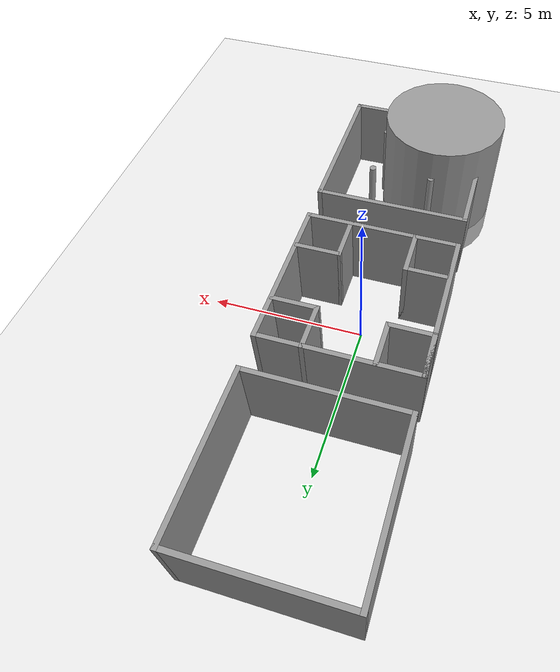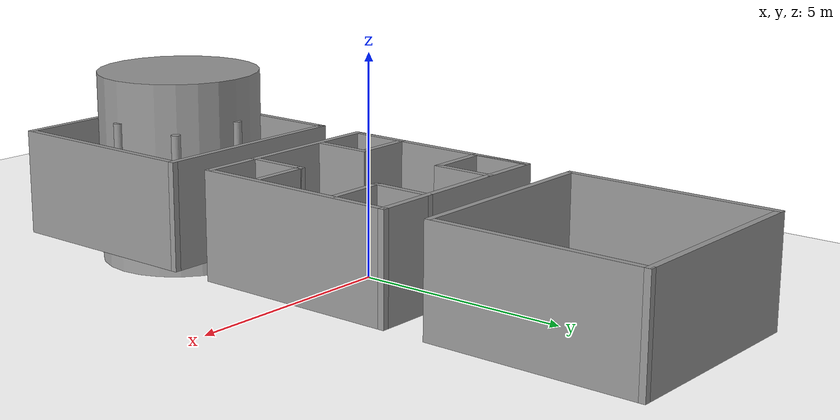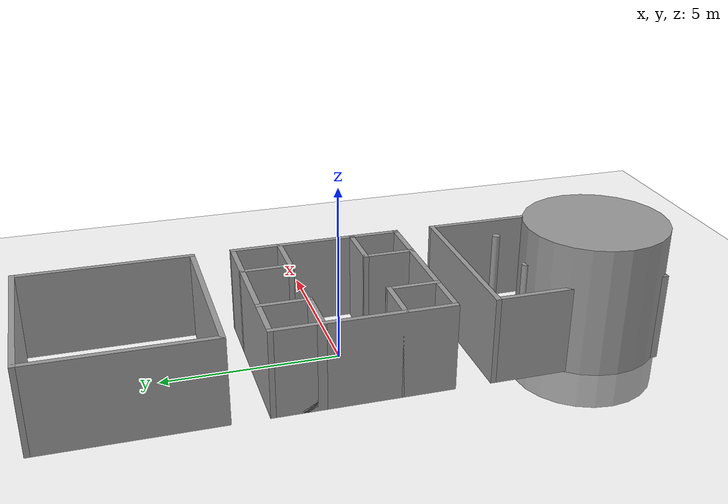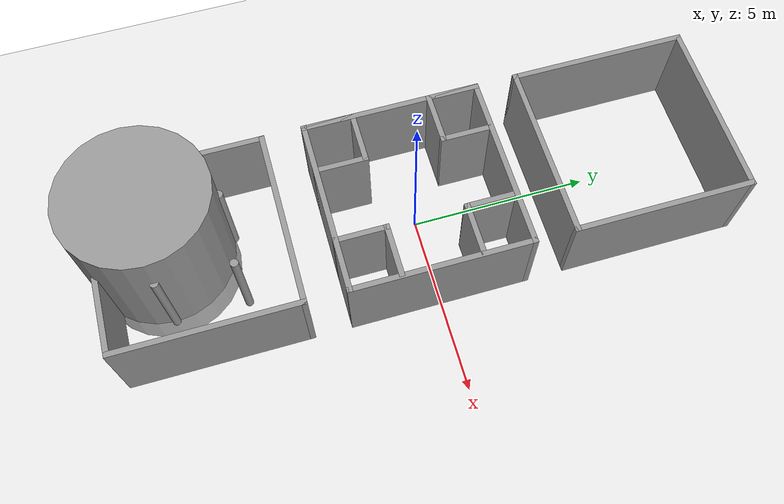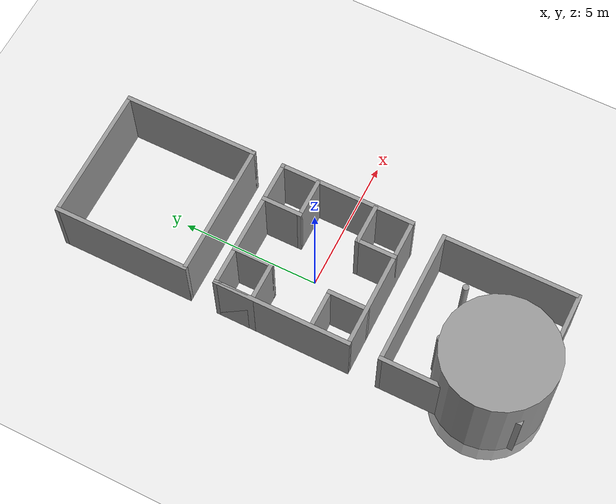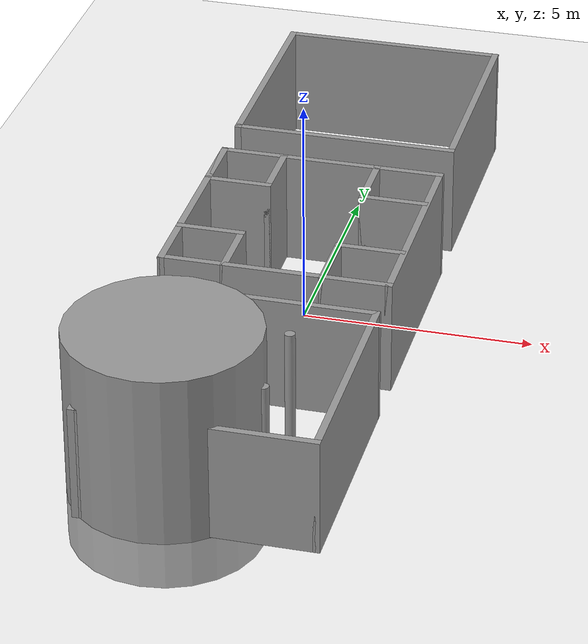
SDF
<sdf version="1.6">
 <world name="default">
  <light name="sun" type="directional">
   <pose>0 0 10 0 -0 0</pose>
   <diffuse>0.8 0.8 0.8 1</diffuse>
   <specular>0.2 0.2 0.2 1</specular>
   <attenuation>
    <range>1000</range>
    <constant>0.9</constant>
    <linear>0.01</linear>
    <quadratic>0.001</quadratic>
   </attenuation>
   <direction>-0.5 0.1 -0.9</direction>
  </light>
  <model name="ground_plane">
   <static>1</static>
   <link name="link">
    <collision name="collision">
     <geometry><plane><normal>0 0 1</normal><size>100 100</size></plane></geometry>
     <surface>
      <contact><collide_bitmask>65535</collide_bitmask></contact>
      <friction><ode><mu>100</mu><mu2>50</mu2></ode></friction>
     </surface>
    </collision>
    <visual name="visual">
     <cast_shadows>0</cast_shadows>
     <geometry><plane><normal>0 0 1</normal><size>100 100</size></plane></geometry>
     <material>
      <script><uri>file://media/materials/scripts/gazebo.material</uri><name>Gazebo/Grey</name></script>
     </material>
    </visual>
   </link>
  </model>
  <gravity>0 0 -9.8</gravity>
  <magnetic_field>6e-06 2.3e-05 -4.2e-05</magnetic_field>
  <atmosphere type="adiabatic"/>
  <physics name="default_physics" default="0" type="ode">
   <max_step_size>0.01</max_step_size>
   <real_time_factor>1</real_time_factor>
   <real_time_update_rate>100</real_time_update_rate>
  </physics>
  <scene><ambient>0.4 0.4 0.4 1</ambient><background>0.7 0.7 0.7 1</background><shadows>1</shadows></scene>
  <spherical_coordinates>
   <surface_model>EARTH_WGS84</surface_model>
   <latitude_deg>0</latitude_deg>
   <longitude_deg>0</longitude_deg>
   <elevation>0</elevation>
   <heading_deg>0</heading_deg>
  </spherical_coordinates>
  <model name="train_ma_02">
   <pose>0 6 0 0 -0 0</pose>
   <link name="Wall_0">
    <collision name="Wall_0_Collision">
     <geometry><box><size>5 0.15 2.5</size></box></geometry>
     <pose>0 0 1.25 0 -0 0</pose>
    </collision>
    <visual name="Wall_0_Visual">
     <pose>0 0 1.25 0 -0 0</pose>
     <geometry><box><size>5 0.15 2.5</size></box></geometry>
     <material>
      <script><uri>file://media/materials/scripts/gazebo.material</uri><name>Gazebo/Grey</name></script>
      <ambient>1 1 1 1</ambient>
     </material>
     <meta><layer>0</layer></meta>
    </visual>
    <pose>-2.425 0 0 0 0 -1.5708</pose>
   </link>
   <link name="Wall_1">
    <collision name="Wall_1_Collision">
     <geometry><box><size>5 0.15 2.5</size></box></geometry>
     <pose>0 0 1.25 0 -0 0</pose>
    </collision>
    <visual name="Wall_1_Visual">
     <pose>0 0 1.25 0 -0 0</pose>
     <geometry><box><size>5 0.15 2.5</size></box></geometry>
     <material>
      <script><uri>file://media/materials/scripts/gazebo.material</uri><name>Gazebo/Grey</name></script>
      <ambient>1 1 1 1</ambient>
     </material>
     <meta><layer>0</layer></meta>
    </visual>
    <pose>0 -2.425 0 0 -0 0</pose>
   </link>
   <link name="Wall_2">
    <collision name="Wall_2_Collision">
     <geometry><box><size>5 0.15 2.5</size></box></geometry>
     <pose>0 0 1.25 0 -0 0</pose>
    </collision>
    <visual name="Wall_2_Visual">
     <pose>0 0 1.25 0 -0 0</pose>
     <geometry><box><size>5 0.15 2.5</size></box></geometry>
     <material>
      <script><uri>file://media/materials/scripts/gazebo.material</uri><name>Gazebo/Grey</name></script>
      <ambient>1 1 1 1</ambient>
     </material>
     <meta><layer>0</layer></meta>
    </visual>
    <pose>2.425 0 0 0 -0 1.5708</pose>
   </link>
   <link name="Wall_3">
    <collision name="Wall_3_Collision">
     <geometry><box><size>5 0.15 2.5</size></box></geometry>
     <pose>0 0 1.25 0 -0 0</pose>
    </collision>
    <visual name="Wall_3_Visual">
     <pose>0 0 1.25 0 -0 0</pose>
     <geometry><box><size>5 0.15 2.5</size></box></geometry>
     <material>
      <script><uri>file://media/materials/scripts/gazebo.material</uri><name>Gazebo/Grey</name></script>
      <ambient>1 1 1 1</ambient>
     </material>
     <meta><layer>0</layer></meta>
    </visual>
    <pose>0 2.425 0 0 -0 3.14159</pose>
   </link>
   <static>1</static>
  </model>
  <model name="train_ma_02_0">
   <pose>0 -6 0 0 -0 0</pose>
   <link name="Wall_0">
    <collision name="Wall_0_Collision">
     <geometry><box><size>5 0.15 2.5</size></box></geometry>
     <pose>0 0 1.25 0 -0 0</pose>
    </collision>
    <visual name="Wall_0_Visual">
     <pose>0 0 1.25 0 -0 0</pose>
     <geometry><box><size>5 0.15 2.5</size></box></geometry>
     <material>
      <script><uri>file://media/materials/scripts/gazebo.material</uri><name>Gazebo/Grey</name></script>
      <ambient>1 1 1 1</ambient>
     </material>
     <meta><layer>0</layer></meta>
    </visual>
    <pose>-2.425 0 0 0 0 -1.5708</pose>
   </link>
   <link name="Wall_1">
    <collision name="Wall_1_Collision">
     <geometry><box><size>5 0.15 2.5</size></box></geometry>
     <pose>0 0 1.25 0 -0 0</pose>
    </collision>
    <visual name="Wall_1_Visual">
     <pose>0 0 1.25 0 -0 0</pose>
     <geometry><box><size>5 0.15 2.5</size></box></geometry>
     <material>
      <script><uri>file://media/materials/scripts/gazebo.material</uri><name>Gazebo/Grey</name></script>
      <ambient>1 1 1 1</ambient>
     </material>
     <meta><layer>0</layer></meta>
    </visual>
    <pose>0 -2.425 0 0 -0 0</pose>
   </link>
   <link name="Wall_2">
    <collision name="Wall_2_Collision">
     <geometry><box><size>5 0.15 2.5</size></box></geometry>
     <pose>0 0 1.25 0 -0 0</pose>
    </collision>
    <visual name="Wall_2_Visual">
     <pose>0 0 1.25 0 -0 0</pose>
     <geometry><box><size>5 0.15 2.5</size></box></geometry>
     <material>
      <script><uri>file://media/materials/scripts/gazebo.material</uri><name>Gazebo/Grey</name></script>
      <ambient>1 1 1 1</ambient>
     </material>
     <meta><layer>0</layer></meta>
    </visual>
    <pose>2.425 0 0 0 -0 1.5708</pose>
   </link>
   <link name="Wall_3">
    <collision name="Wall_3_Collision">
     <geometry><box><size>5 0.15 2.5</size></box></geometry>
     <pose>0 0 1.25 0 -0 0</pose>
    </collision>
    <visual name="Wall_3_Visual">
     <pose>0 0 1.25 0 -0 0</pose>
     <geometry><box><size>5 0.15 2.5</size></box></geometry>
     <material>
      <script><uri>file://media/materials/scripts/gazebo.material</uri><name>Gazebo/Grey</name></script>
      <ambient>1 1 1 1</ambient>
     </material>
     <meta><layer>0</layer></meta>
    </visual>
    <pose>0 2.425 0 0 -0 3.14159</pose>
   </link>
   <static>1</static>
  </model>
  <model name="static_cylinder">
   <link name="link">
    <inertial>
     <mass>1</mass>
     <inertia><ixx>0.145833</ixx><ixy>0</ixy><ixz>0</ixz><iyy>0.145833</iyy><iyz>0</iyz><izz>0.125</izz></inertia>
    </inertial>
    <visual name="visual">
     <geometry><cylinder><radius>1.99916</radius><length>4.71244</length></cylinder></geometry>
     <material>
      <script><name>Gazebo/Grey</name><uri>file://media/materials/scripts/gazebo.material</uri></script>
      <shader type="pixel"/>
      <ambient>0.3 0.3 0.3 1</ambient>
      <diffuse>0.7 0.7 0.7 1</diffuse>
      <specular>0.01 0.01 0.01 1</specular>
      <emissive>0 0 0 1</emissive>
     </material>
    </visual>
    <collision name="collision">
     <geometry><cylinder><radius>1.99916</radius><length>4.71244</length></cylinder></geometry>
     <surface>
      <friction>
       <ode><mu>1</mu><mu2>1</mu2><fdir1>0 0 0</fdir1><slip1>0</slip1><slip2>0</slip2></ode>
       <torsional>
        <coefficient>1</coefficient>
        <patch_radius>0</patch_radius>
        <surface_radius>0</surface_radius>
        <use_patch_radius>1</use_patch_radius>
        <ode><slip>0</slip></ode>
       </torsional>
      </friction>
      <bounce><restitution_coefficient>0</restitution_coefficient><threshold>1e+06</threshold></bounce>
      <contact>
       <collide_without_contact>0</collide_without_contact>
       <collide_without_contact_bitmask>1</collide_without_contact_bitmask>
       <collide_bitmask>1</collide_bitmask>
       <ode>
        <soft_cfm>0</soft_cfm>
        <soft_erp>0.2</soft_erp>
        <kp>1e+13</kp>
        <kd>1</kd>
        <max_vel>0.01</max_vel>
        <min_depth>0</min_depth>
       </ode>
       <bullet>
        <split_impulse>1</split_impulse>
        <split_impulse_penetration_threshold>-0.01</split_impulse_penetration_threshold>
        <soft_cfm>0</soft_cfm>
        <soft_erp>0.2</soft_erp>
        <kp>1e+13</kp>
        <kd>1</kd>
       </bullet>
      </contact>
     </surface>
    </collision>
   </link>
   <static>1</static>
   <pose>-1 -7 1.30771 0 -0 0</pose>
  </model>
  <model name="ma_train_08">
   <link name="Wall_42">
    <collision name="Wall_42_Collision">
     <geometry><box><size>5 0.15 2.5</size></box></geometry>
     <pose>0 0 1.25 0 -0 0</pose>
    </collision>
    <visual name="Wall_42_Visual">
     <pose>0 0 1.25 0 -0 0</pose>
     <geometry><box><size>5 0.15 2.5</size></box></geometry>
     <material>
      <script><uri>file://media/materials/scripts/gazebo.material</uri><name>Gazebo/Grey</name></script>
      <ambient>1 1 1 1</ambient>
     </material>
     <meta><layer>0</layer></meta>
    </visual>
    <pose>-2.425 0 0 0 0 -1.5708</pose>
   </link>
   <link name="Wall_43">
    <collision name="Wall_43_Collision">
     <geometry><box><size>5 0.15 2.5</size></box></geometry>
     <pose>0 0 1.25 0 -0 0</pose>
    </collision>
    <visual name="Wall_43_Visual">
     <pose>0 0 1.25 0 -0 0</pose>
     <geometry><box><size>5 0.15 2.5</size></box></geometry>
     <material>
      <script><uri>file://media/materials/scripts/gazebo.material</uri><name>Gazebo/Grey</name></script>
      <ambient>1 1 1 1</ambient>
     </material>
     <meta><layer>0</layer></meta>
    </visual>
    <pose>0 -2.425 0 0 -0 0</pose>
   </link>
   <link name="Wall_44">
    <collision name="Wall_44_Collision">
     <geometry><box><size>5 0.15 2.5</size></box></geometry>
     <pose>0 0 1.25 0 -0 0</pose>
    </collision>
    <visual name="Wall_44_Visual">
     <pose>0 0 1.25 0 -0 0</pose>
     <geometry><box><size>5 0.15 2.5</size></box></geometry>
     <material>
      <script><uri>file://media/materials/scripts/gazebo.material</uri><name>Gazebo/Grey</name></script>
      <ambient>1 1 1 1</ambient>
     </material>
     <meta><layer>0</layer></meta>
    </visual>
    <pose>2.425 0 0 0 -0 1.5708</pose>
   </link>
   <link name="Wall_45">
    <collision name="Wall_45_Collision">
     <geometry><box><size>5 0.15 2.5</size></box></geometry>
     <pose>0 0 1.25 0 -0 0</pose>
    </collision>
    <visual name="Wall_45_Visual">
     <pose>0 0 1.25 0 -0 0</pose>
     <geometry><box><size>5 0.15 2.5</size></box></geometry>
     <material>
      <script><uri>file://media/materials/scripts/gazebo.material</uri><name>Gazebo/Grey</name></script>
      <ambient>1 1 1 1</ambient>
     </material>
     <meta><layer>0</layer></meta>
    </visual>
    <pose>0 2.425 0 0 -0 3.14159</pose>
   </link>
   <link name="Wall_47">
    <collision name="Wall_47_Collision">
     <geometry><box><size>1.25 0.15 2.5</size></box></geometry>
     <pose>0 0 1.25 0 -0 0</pose>
    </collision>
    <visual name="Wall_47_Visual">
     <pose>0 0 1.25 0 -0 0</pose>
     <geometry><box><size>1.25 0.15 2.5</size></box></geometry>
     <material>
      <script><uri>file://media/materials/scripts/gazebo.material</uri><name>Gazebo/Grey</name></script>
      <ambient>1 1 1 1</ambient>
     </material>
     <meta><layer>0</layer></meta>
    </visual>
    <pose>-2.425 1.875 0 0 0 -1.5708</pose>
   </link>
   <link name="Wall_52">
    <collision name="Wall_52_Collision">
     <geometry><box><size>1.5 0.15 2.5</size></box></geometry>
     <pose>0 0 1.25 0 -0 0</pose>
    </collision>
    <visual name="Wall_52_Visual">
     <pose>0 0 1.25 0 -0 0</pose>
     <geometry><box><size>1.5 0.15 2.5</size></box></geometry>
     <material>
      <script><uri>file://media/materials/scripts/gazebo.material</uri><name>Gazebo/Grey</name></script>
      <ambient>1 1 1 1</ambient>
     </material>
     <meta><layer>0</layer></meta>
    </visual>
    <pose>-2.425 1.75 0 0 0 -1.5708</pose>
   </link>
   <link name="Wall_53">
    <collision name="Wall_53_Collision">
     <geometry><box><size>1.5 0.15 2.5</size></box></geometry>
     <pose>0 0 1.25 0 -0 0</pose>
    </collision>
    <visual name="Wall_53_Visual">
     <pose>0 0 1.25 0 -0 0</pose>
     <geometry><box><size>1.5 0.15 2.5</size></box></geometry>
     <material>
      <script><uri>file://media/materials/scripts/gazebo.material</uri><name>Gazebo/Grey</name></script>
      <ambient>1 1 1 1</ambient>
     </material>
     <meta><layer>0</layer></meta>
    </visual>
    <pose>-1.75 1.075 0 0 -0 0</pose>
   </link>
   <link name="Wall_55">
    <collision name="Wall_55_Collision">
     <geometry><box><size>1.5 0.15 2.5</size></box></geometry>
     <pose>0 0 1.25 0 -0 0</pose>
    </collision>
    <visual name="Wall_55_Visual">
     <pose>0 0 1.25 0 -0 0</pose>
     <geometry><box><size>1.5 0.15 2.5</size></box></geometry>
     <material>
      <script><uri>file://media/materials/scripts/gazebo.material</uri><name>Gazebo/Grey</name></script>
      <ambient>1 1 1 1</ambient>
     </material>
     <meta><layer>0</layer></meta>
    </visual>
    <pose>1.7 1.075 0 0 -0 0</pose>
   </link>
   <link name="Wall_57">
    <collision name="Wall_57_Collision">
     <geometry><box><size>1.5 0.15 2.5</size></box></geometry>
     <pose>0 0 1.25 0 -0 0</pose>
    </collision>
    <visual name="Wall_57_Visual">
     <pose>0 0 1.25 0 -0 0</pose>
     <geometry><box><size>1.5 0.15 2.5</size></box></geometry>
     <material>
      <script><uri>file://media/materials/scripts/gazebo.material</uri><name>Gazebo/Grey</name></script>
      <ambient>1 1 1 1</ambient>
     </material>
     <meta><layer>0</layer></meta>
    </visual>
    <pose>-2.425 -1.75 0 0 -0 1.5708</pose>
   </link>
   <link name="Wall_58">
    <collision name="Wall_58_Collision">
     <geometry><box><size>1.5 0.15 2.5</size></box></geometry>
     <pose>0 0 1.25 0 -0 0</pose>
    </collision>
    <visual name="Wall_58_Visual">
     <pose>0 0 1.25 0 -0 0</pose>
     <geometry><box><size>1.5 0.15 2.5</size></box></geometry>
     <material>
      <script><uri>file://media/materials/scripts/gazebo.material</uri><name>Gazebo/Grey</name></script>
      <ambient>1 1 1 1</ambient>
     </material>
     <meta><layer>0</layer></meta>
    </visual>
    <pose>-1.75 -1.075 0 0 -0 0</pose>
   </link>
   <link name="Wall_60">
    <collision name="Wall_60_Collision">
     <geometry><box><size>1.5 0.15 2.5</size></box></geometry>
     <pose>0 0 1.25 0 -0 0</pose>
    </collision>
    <visual name="Wall_60_Visual">
     <pose>0 0 1.25 0 -0 0</pose>
     <geometry><box><size>1.5 0.15 2.5</size></box></geometry>
     <material>
      <script><uri>file://media/materials/scripts/gazebo.material</uri><name>Gazebo/Grey</name></script>
      <ambient>1 1 1 1</ambient>
     </material>
     <meta><layer>0</layer></meta>
    </visual>
    <pose>1.7 -1.075 0 0 -0 0</pose>
   </link>
   <link name="Wall_62">
    <collision name="Wall_62_Collision">
     <geometry><box><size>1.5 0.15 2.5</size></box></geometry>
     <pose>0 0 1.25 0 -0 0</pose>
    </collision>
    <visual name="Wall_62_Visual">
     <pose>0 0 1.25 0 -0 0</pose>
     <geometry><box><size>1.5 0.15 2.5</size></box></geometry>
     <material>
      <script><uri>file://media/materials/scripts/gazebo.material</uri><name>Gazebo/Grey</name></script>
      <ambient>1 1 1 1</ambient>
     </material>
     <meta><layer>0</layer></meta>
    </visual>
    <pose>-1.075 1.75 0 0 -0 1.5708</pose>
   </link>
   <link name="Wall_64">
    <collision name="Wall_64_Collision">
     <geometry><box><size>1.5 0.15 2.5</size></box></geometry>
     <pose>0 0 1.25 0 -0 0</pose>
    </collision>
    <visual name="Wall_64_Visual">
     <pose>0 0 1.25 0 -0 0</pose>
     <geometry><box><size>1.5 0.15 2.5</size></box></geometry>
     <material>
      <script><uri>file://media/materials/scripts/gazebo.material</uri><name>Gazebo/Grey</name></script>
      <ambient>1 1 1 1</ambient>
     </material>
     <meta><layer>0</layer></meta>
    </visual>
    <pose>1.025 1.75 0 0 -0 1.5708</pose>
   </link>
   <link name="Wall_66">
    <collision name="Wall_66_Collision">
     <geometry><box><size>1.5 0.15 2.5</size></box></geometry>
     <pose>0 0 1.25 0 -0 0</pose>
    </collision>
    <visual name="Wall_66_Visual">
     <pose>0 0 1.25 0 -0 0</pose>
     <geometry><box><size>1.5 0.15 2.5</size></box></geometry>
     <material>
      <script><uri>file://media/materials/scripts/gazebo.material</uri><name>Gazebo/Grey</name></script>
      <ambient>1 1 1 1</ambient>
     </material>
     <meta><layer>0</layer></meta>
    </visual>
    <pose>-1.075 -1.75 0 0 0 -1.5708</pose>
   </link>
   <link name="Wall_68">
    <collision name="Wall_68_Collision">
     <geometry><box><size>1.5 0.15 2.5</size></box></geometry>
     <pose>0 0 1.25 0 -0 0</pose>
    </collision>
    <visual name="Wall_68_Visual">
     <pose>0 0 1.25 0 -0 0</pose>
     <geometry><box><size>1.5 0.15 2.5</size></box></geometry>
     <material>
      <script><uri>file://media/materials/scripts/gazebo.material</uri><name>Gazebo/Grey</name></script>
      <ambient>1 1 1 1</ambient>
     </material>
     <meta><layer>0</layer></meta>
    </visual>
    <pose>1.025 -1.75 0 0 0 -1.5708</pose>
   </link>
   <static>1</static>
  </model>
  <model name="static_cylinder_clone">
   <link name="link">
    <inertial>
     <mass>1</mass>
     <inertia><ixx>0.145833</ixx><ixy>0</ixy><ixz>0</ixz><iyy>0.145833</iyy><iyz>0</iyz><izz>0.125</izz></inertia>
    </inertial>
    <visual name="visual">
     <geometry><cylinder><radius>0.110967</radius><length>2.67576</length></cylinder></geometry>
     <material>
      <script><name>Gazebo/Grey</name><uri>file://media/materials/scripts/gazebo.material</uri></script>
      <shader type="pixel"/>
      <ambient>0.3 0.3 0.3 1</ambient>
      <diffuse>0.7 0.7 0.7 1</diffuse>
      <specular>0.01 0.01 0.01 1</specular>
      <emissive>0 0 0 1</emissive>
     </material>
    </visual>
    <collision name="collision">
     <geometry><cylinder><radius>0.110967</radius><length>2.67576</length></cylinder></geometry>
     <surface>
      <friction>
       <ode><mu>1</mu><mu2>1</mu2><fdir1>0 0 0</fdir1><slip1>0</slip1><slip2>0</slip2></ode>
       <torsional>
        <coefficient>1</coefficient>
        <patch_radius>0</patch_radius>
        <surface_radius>0</surface_radius>
        <use_patch_radius>1</use_patch_radius>
        <ode><slip>0</slip></ode>
       </torsional>
      </friction>
      <bounce><restitution_coefficient>0</restitution_coefficient><threshold>1e+06</threshold></bounce>
      <contact>
       <collide_without_contact>0</collide_without_contact>
       <collide_without_contact_bitmask>1</collide_without_contact_bitmask>
       <collide_bitmask>1</collide_bitmask>
       <ode>
        <soft_cfm>0</soft_cfm>
        <soft_erp>0.2</soft_erp>
        <kp>1e+13</kp>
        <kd>1</kd>
        <max_vel>0.01</max_vel>
        <min_depth>0</min_depth>
       </ode>
       <bullet>
        <split_impulse>1</split_impulse>
        <split_impulse_penetration_threshold>-0.01</split_impulse_penetration_threshold>
        <soft_cfm>0</soft_cfm>
        <soft_erp>0.2</soft_erp>
        <kp>1e+13</kp>
        <kd>1</kd>
       </bullet>
      </contact>
     </surface>
    </collision>
   </link>
   <static>1</static>
   <pose>-1 -5 1.30771 0 -0 0</pose>
  </model>
  <model name="static_cylinder_clone_1">
   <link name="link">
    <inertial>
     <mass>1</mass>
     <inertia><ixx>0.145833</ixx><ixy>0</ixy><ixz>0</ixz><iyy>0.145833</iyy><iyz>0</iyz><izz>0.125</izz></inertia>
    </inertial>
    <visual name="visual">
     <geometry><cylinder><radius>0.110967</radius><length>2.67576</length></cylinder></geometry>
     <material>
      <script><name>Gazebo/Grey</name><uri>file://media/materials/scripts/gazebo.material</uri></script>
      <shader type="pixel"/>
      <ambient>0.3 0.3 0.3 1</ambient>
      <diffuse>0.7 0.7 0.7 1</diffuse>
      <specular>0.01 0.01 0.01 1</specular>
      <emissive>0 0 0 1</emissive>
     </material>
    </visual>
    <collision name="collision">
     <geometry><cylinder><radius>0.110967</radius><length>2.67576</length></cylinder></geometry>
     <surface>
      <friction>
       <ode><mu>1</mu><mu2>1</mu2><fdir1>0 0 0</fdir1><slip1>0</slip1><slip2>0</slip2></ode>
       <torsional>
        <coefficient>1</coefficient>
        <patch_radius>0</patch_radius>
        <surface_radius>0</surface_radius>
        <use_patch_radius>1</use_patch_radius>
        <ode><slip>0</slip></ode>
       </torsional>
      </friction>
      <bounce><restitution_coefficient>0</restitution_coefficient><threshold>1e+06</threshold></bounce>
      <contact>
       <collide_without_contact>0</collide_without_contact>
       <collide_without_contact_bitmask>1</collide_without_contact_bitmask>
       <collide_bitmask>1</collide_bitmask>
       <ode>
        <soft_cfm>0</soft_cfm>
        <soft_erp>0.2</soft_erp>
        <kp>1e+13</kp>
        <kd>1</kd>
        <max_vel>0.01</max_vel>
        <min_depth>0</min_depth>
       </ode>
       <bullet>
        <split_impulse>1</split_impulse>
        <split_impulse_penetration_threshold>-0.01</split_impulse_penetration_threshold>
        <soft_cfm>0</soft_cfm>
        <soft_erp>0.2</soft_erp>
        <kp>1e+13</kp>
        <kd>1</kd>
       </bullet>
      </contact>
     </surface>
    </collision>
   </link>
   <static>1</static>
   <pose>1 -7 1.30771 0 -0 0</pose>
  </model>
  <model name="static_cylinder_clone_1_clone">
   <link name="link">
    <inertial>
     <mass>1</mass>
     <inertia><ixx>0.145833</ixx><ixy>0</ixy><ixz>0</ixz><iyy>0.145833</iyy><iyz>0</iyz><izz>0.125</izz></inertia>
    </inertial>
    <visual name="visual">
     <geometry><cylinder><radius>0.110967</radius><length>2.67576</length></cylinder></geometry>
     <material>
      <script><name>Gazebo/Grey</name><uri>file://media/materials/scripts/gazebo.material</uri></script>
      <shader type="pixel"/>
      <ambient>0.3 0.3 0.3 1</ambient>
      <diffuse>0.7 0.7 0.7 1</diffuse>
      <specular>0.01 0.01 0.01 1</specular>
      <emissive>0 0 0 1</emissive>
     </material>
    </visual>
    <collision name="collision">
     <geometry><cylinder><radius>0.110967</radius><length>2.67576</length></cylinder></geometry>
     <surface>
      <friction>
       <ode><mu>1</mu><mu2>1</mu2><fdir1>0 0 0</fdir1><slip1>0</slip1><slip2>0</slip2></ode>
       <torsional>
        <coefficient>1</coefficient>
        <patch_radius>0</patch_radius>
        <surface_radius>0</surface_radius>
        <use_patch_radius>1</use_patch_radius>
        <ode><slip>0</slip></ode>
       </torsional>
      </friction>
      <bounce><restitution_coefficient>0</restitution_coefficient><threshold>1e+06</threshold></bounce>
      <contact>
       <collide_without_contact>0</collide_without_contact>
       <collide_without_contact_bitmask>1</collide_without_contact_bitmask>
       <collide_bitmask>1</collide_bitmask>
       <ode>
        <soft_cfm>0</soft_cfm>
        <soft_erp>0.2</soft_erp>
        <kp>1e+13</kp>
        <kd>1</kd>
        <max_vel>0.01</max_vel>
        <min_depth>0</min_depth>
       </ode>
       <bullet>
        <split_impulse>1</split_impulse>
        <split_impulse_penetration_threshold>-0.01</split_impulse_penetration_threshold>
        <soft_cfm>0</soft_cfm>
        <soft_erp>0.2</soft_erp>
        <kp>1e+13</kp>
        <kd>1</kd>
       </bullet>
      </contact>
     </surface>
    </collision>
   </link>
   <static>1</static>
   <pose>1 -5 1.30771 0 -0 0</pose>
  </model>
 </world>
</sdf>
